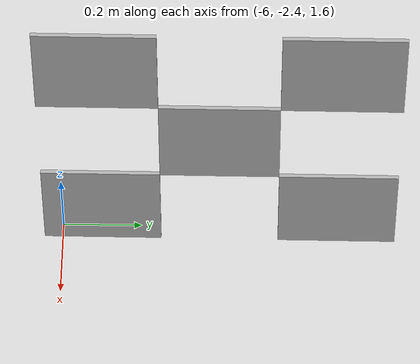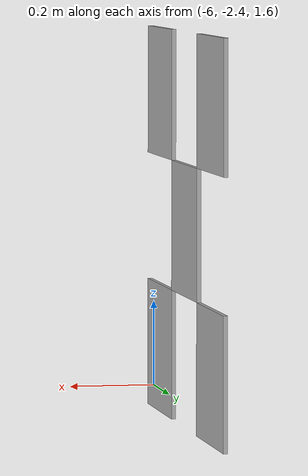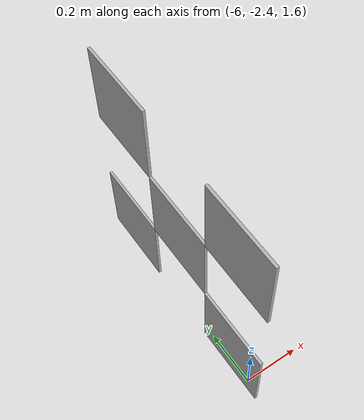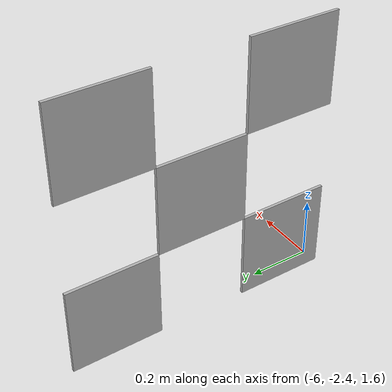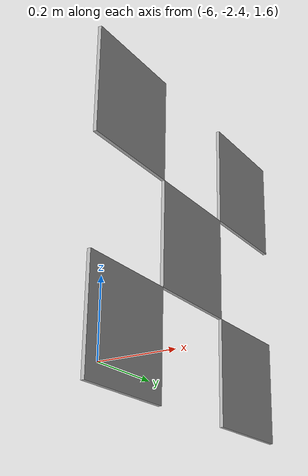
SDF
<?xml version="1.0" ?>
<sdf version="1.4">

	<model name='tag_bundle10'>

		<static>True</static>

		<link name="tag_45">

			<pose>-6 -2 2 0 0 3.1426</pose>

			<inertial>
	        	<mass>0.1</mass>

	        	<inertia>
					<ixx>0.0166667</ixx>
					<ixy>0</ixy>
					<ixz>0</ixz>
					<iyy>0.0166667</iyy>
					<iyz>0</iyz>
					<izz>0.0166667</izz>
        		</inertia>

        		<pose frame=''>0 0 0 0 -0 0</pose>
      		</inertial>

			<pose frame=''>0 0 0 0 -0 0</pose>
			<gravity>1</gravity>
			<self_collide>0</self_collide>
			<kinematic>0</kinematic>
			<enable_wind>0</enable_wind>

			<visual name='visual_45'>
				<pose frame=''>0 0 0 0 -0 0</pose>

		        <geometry>
		        	<box>
		        	<size>0.01 0.3 0.3</size>
		        	</box>
		        </geometry>

		        <material>
		        	<lighting>0</lighting>

		        	<script>
		        		<uri>models://media/materials/scripts/Apriltag.material</uri>
		        		<name>Apriltag/id45</name>
		          	</script>

		        	<shader type='vertex'>
		        		<normal_map>__default__</normal_map>
		          	</shader>

		        	<ambient>0.3 0.3 0.3 1</ambient>
		        	<diffuse>0.7 0.7 0.7 1</diffuse>
		        	<specular>0.01 0.01 0.01 1</specular>
		        	<emissive>0 0 0 1</emissive>
		        </material>

		        <transparency>0</transparency>
		        <cast_shadows>1</cast_shadows>
			</visual>

			<collision name='collision_45'>
				<laser_retro>0</laser_retro>
        		<max_contacts>10</max_contacts>
        		<pose frame=''>0 0 0 0 -0 0</pose>

		        <geometry>
		        	<box>
		        		<size>0.01 0.3 0.3</size>
		        	</box>
		        </geometry>

		        <surface>
		        	<friction>
		            	<ode>
		            		<mu>1</mu>
		            		<mu2>1</mu2>
		            		<fdir1>0 0 0</fdir1>
		            		<slip1>0</slip1>
		            		<slip2>0</slip2>
		            	</ode>

		           		<torsional>
		            		<coefficient>1</coefficient>
	            			<patch_radius>0</patch_radius>
	            			<surface_radius>0</surface_radius>
	            			<use_patch_radius>1</use_patch_radius>

	            			<ode>
		                		<slip>0</slip>
		              		</ode>
		            	</torsional>
		          	</friction>

		        	<bounce>
		            	<restitution_coefficient>0</restitution_coefficient>
		            	<threshold>1e+06</threshold>
		        	</bounce>

		        	<contact>
		            	<collide_without_contact>0</collide_without_contact>
		            	<collide_without_contact_bitmask>1</collide_without_contact_bitmask>
		            	<collide_bitmask>1</collide_bitmask>

		            	<ode>
		            		<soft_cfm>0</soft_cfm>
		            		<soft_erp>0.2</soft_erp>
		            		<kp>1e+13</kp>
		            		<kd>1</kd>
		            		<max_vel>0.01</max_vel>
		            		<min_depth>0</min_depth>
		            	</ode>

			            <bullet>
			            	<split_impulse>1</split_impulse>
			            	<split_impulse_penetration_threshold>-0.01</split_impulse_penetration_threshold>
			            	<soft_cfm>0</soft_cfm>
			            	<soft_erp>0.2</soft_erp>
			            	<kp>1e+13</kp>
			            	<kd>1</kd>
			            </bullet>
		        	</contact>
		        </surface>
		    </collision>
		</link>
 -->
		<link name="tag_46">

			<pose>-6 -1.7 2.3 0 0 3.1426</pose>

			<inertial>
	        	<mass>0.1</mass>

	        	<inertia>
					<ixx>0.0166667</ixx>
					<ixy>0</ixy>
					<ixz>0</ixz>
					<iyy>0.0166667</iyy>
					<iyz>0</iyz>
					<izz>0.0166667</izz>
        		</inertia>

        		<pose frame=''>0 0 0 0 -0 0</pose>
      		</inertial>

			<pose frame=''>0 0 0 0 -0 0</pose>
			<gravity>1</gravity>
			<self_collide>0</self_collide>
			<kinematic>0</kinematic>
			<enable_wind>0</enable_wind>

			<visual name='visual_46'>
				<pose frame=''>0 0 0 0 -0 0</pose>

		        <geometry>
		        	<box>
		        	<size>0.01 0.3 0.3</size>
		        	</box>
		        </geometry>

		        <material>
		        	<lighting>0</lighting>

		        	<script>
		        		<uri>models://media/materials/scripts/Apriltag.material</uri>
		        		<name>Apriltag/id46</name>
		          	</script>

		        	<shader type='vertex'>
		        		<normal_map>__default__</normal_map>
		          	</shader>

		        	<ambient>0.3 0.3 0.3 1</ambient>
		        	<diffuse>0.7 0.7 0.7 1</diffuse>
		        	<specular>0.01 0.01 0.01 1</specular>
		        	<emissive>0 0 0 1</emissive>
		        </material>

		        <transparency>0</transparency>
		        <cast_shadows>1</cast_shadows>
			</visual>

			<collision name='collision_46'>
				<laser_retro>0</laser_retro>
        		<max_contacts>10</max_contacts>
        		<pose frame=''>0 0 0 0 -0 0</pose>

		        <geometry>
		        	<box>
		        		<size>0.01 0.3 0.3</size>
		        	</box>
		        </geometry>

		        <surface>
		        	<friction>
		            	<ode>
		            		<mu>1</mu>
		            		<mu2>1</mu2>
		            		<fdir1>0 0 0</fdir1>
		            		<slip1>0</slip1>
		            		<slip2>0</slip2>
		            	</ode>

		           		<torsional>
		            		<coefficient>1</coefficient>
	            			<patch_radius>0</patch_radius>
	            			<surface_radius>0</surface_radius>
	            			<use_patch_radius>1</use_patch_radius>

	            			<ode>
		                		<slip>0</slip>
		              		</ode>
		            	</torsional>
		          	</friction>

		        	<bounce>
		            	<restitution_coefficient>0</restitution_coefficient>
		            	<threshold>1e+06</threshold>
		        	</bounce>

		        	<contact>
		            	<collide_without_contact>0</collide_without_contact>
		            	<collide_without_contact_bitmask>1</collide_without_contact_bitmask>
		            	<collide_bitmask>1</collide_bitmask>

		            	<ode>
		            		<soft_cfm>0</soft_cfm>
		            		<soft_erp>0.2</soft_erp>
		            		<kp>1e+13</kp>
		            		<kd>1</kd>
		            		<max_vel>0.01</max_vel>
		            		<min_depth>0</min_depth>
		            	</ode>

			            <bullet>
			            	<split_impulse>1</split_impulse>
			            	<split_impulse_penetration_threshold>-0.01</split_impulse_penetration_threshold>
			            	<soft_cfm>0</soft_cfm>
			            	<soft_erp>0.2</soft_erp>
			            	<kp>1e+13</kp>
			            	<kd>1</kd>
			            </bullet>
		        	</contact>
		        </surface>
		    </collision>
		</link>

		<link name="tag_47">

			<pose>-6 -2.3 2.3 0 0 3.1426</pose>

			<inertial>
	        	<mass>0.1</mass>

	        	<inertia>
					<ixx>0.0166667</ixx>
					<ixy>0</ixy>
					<ixz>0</ixz>
					<iyy>0.0166667</iyy>
					<iyz>0</iyz>
					<izz>0.0166667</izz>
        		</inertia>

        		<pose frame=''>0 0 0 0 -0 0</pose>
      		</inertial>

			<pose frame=''>0 0 0 0 -0 0</pose>
			<gravity>1</gravity>
			<self_collide>0</self_collide>
			<kinematic>0</kinematic>
			<enable_wind>0</enable_wind>

			<visual name='visual_47'>
				<pose frame=''>0 0 0 0 -0 0</pose>

		        <geometry>
		        	<box>
		        	<size>0.01 0.3 0.3</size>
		        	</box>
		        </geometry>

		        <material>
		        	<lighting>0</lighting>

		        	<script>
		        		<uri>models://media/materials/scripts/Apriltag.material</uri>
		        		<name>Apriltag/id47</name>
		          	</script>

		        	<shader type='vertex'>
		        		<normal_map>__default__</normal_map>
		          	</shader>

		        	<ambient>0.3 0.3 0.3 1</ambient>
		        	<diffuse>0.7 0.7 0.7 1</diffuse>
		        	<specular>0.01 0.01 0.01 1</specular>
		        	<emissive>0 0 0 1</emissive>
		        </material>

		        <transparency>0</transparency>
		        <cast_shadows>1</cast_shadows>
			</visual>

			<collision name='collision_47'>
				<laser_retro>0</laser_retro>
        		<max_contacts>10</max_contacts>
        		<pose frame=''>0 0 0 0 -0 0</pose>

		        <geometry>
		        	<box>
		        		<size>0.01 0.3 0.3</size>
		        	</box>
		        </geometry>

		        <surface>
		        	<friction>
		            	<ode>
		            		<mu>1</mu>
		            		<mu2>1</mu2>
		            		<fdir1>0 0 0</fdir1>
		            		<slip1>0</slip1>
		            		<slip2>0</slip2>
		            	</ode>

		           		<torsional>
		            		<coefficient>1</coefficient>
	            			<patch_radius>0</patch_radius>
	            			<surface_radius>0</surface_radius>
	            			<use_patch_radius>1</use_patch_radius>

	            			<ode>
		                		<slip>0</slip>
		              		</ode>
		            	</torsional>
		          	</friction>

		        	<bounce>
		            	<restitution_coefficient>0</restitution_coefficient>
		            	<threshold>1e+06</threshold>
		        	</bounce>

		        	<contact>
		            	<collide_without_contact>0</collide_without_contact>
		            	<collide_without_contact_bitmask>1</collide_without_contact_bitmask>
		            	<collide_bitmask>1</collide_bitmask>

		            	<ode>
		            		<soft_cfm>0</soft_cfm>
		            		<soft_erp>0.2</soft_erp>
		            		<kp>1e+13</kp>
		            		<kd>1</kd>
		            		<max_vel>0.01</max_vel>
		            		<min_depth>0</min_depth>
		            	</ode>

			            <bullet>
			            	<split_impulse>1</split_impulse>
			            	<split_impulse_penetration_threshold>-0.01</split_impulse_penetration_threshold>
			            	<soft_cfm>0</soft_cfm>
			            	<soft_erp>0.2</soft_erp>
			            	<kp>1e+13</kp>
			            	<kd>1</kd>
			            </bullet>
		        	</contact>
		        </surface>
		    </collision>
		</link>

		<link name="tag_48">

			<pose>-6 -2.3 1.7 0 0 3.1426</pose>

			<inertial>
	        	<mass>0.1</mass>

	        	<inertia>
					<ixx>0.0166667</ixx>
					<ixy>0</ixy>
					<ixz>0</ixz>
					<iyy>0.0166667</iyy>
					<iyz>0</iyz>
					<izz>0.0166667</izz>
        		</inertia>

        		<pose frame=''>0 0 0 0 -0 0</pose>
      		</inertial>

			<pose frame=''>0 0 0 0 -0 0</pose>
			<gravity>1</gravity>
			<self_collide>0</self_collide>
			<kinematic>0</kinematic>
			<enable_wind>0</enable_wind>

			<visual name='visual_48'>
				<pose frame=''>0 0 0 0 -0 0</pose>

		        <geometry>
		        	<box>
		        	<size>0.01 0.3 0.3</size>
		        	</box>
		        </geometry>

		        <material>
		        	<lighting>0</lighting>

		        	<script>
		        		<uri>models://media/materials/scripts/Apriltag.material</uri>
		        		<name>Apriltag/id48</name>
		          	</script>

		        	<shader type='vertex'>
		        		<normal_map>__default__</normal_map>
		          	</shader>

		        	<ambient>0.3 0.3 0.3 1</ambient>
		        	<diffuse>0.7 0.7 0.7 1</diffuse>
		        	<specular>0.01 0.01 0.01 1</specular>
		        	<emissive>0 0 0 1</emissive>
		        </material>

		        <transparency>0</transparency>
		        <cast_shadows>1</cast_shadows>
			</visual>

			<collision name='collision_48'>
				<laser_retro>0</laser_retro>
        		<max_contacts>10</max_contacts>
        		<pose frame=''>0 0 0 0 -0 0</pose>

		        <geometry>
		        	<box>
		        		<size>0.01 0.3 0.3</size>
		        	</box>
		        </geometry>

		        <surface>
		        	<friction>
		            	<ode>
		            		<mu>1</mu>
		            		<mu2>1</mu2>
		            		<fdir1>0 0 0</fdir1>
		            		<slip1>0</slip1>
		            		<slip2>0</slip2>
		            	</ode>

		           		<torsional>
		            		<coefficient>1</coefficient>
	            			<patch_radius>0</patch_radius>
	            			<surface_radius>0</surface_radius>
	            			<use_patch_radius>1</use_patch_radius>

	            			<ode>
		                		<slip>0</slip>
		              		</ode>
		            	</torsional>
		          	</friction>

		        	<bounce>
		            	<restitution_coefficient>0</restitution_coefficient>
		            	<threshold>1e+06</threshold>
		        	</bounce>

		        	<contact>
		            	<collide_without_contact>0</collide_without_contact>
		            	<collide_without_contact_bitmask>1</collide_without_contact_bitmask>
		            	<collide_bitmask>1</collide_bitmask>

		            	<ode>
		            		<soft_cfm>0</soft_cfm>
		            		<soft_erp>0.2</soft_erp>
		            		<kp>1e+13</kp>
		            		<kd>1</kd>
		            		<max_vel>0.01</max_vel>
		            		<min_depth>0</min_depth>
		            	</ode>

			            <bullet>
			            	<split_impulse>1</split_impulse>
			            	<split_impulse_penetration_threshold>-0.01</split_impulse_penetration_threshold>
			            	<soft_cfm>0</soft_cfm>
			            	<soft_erp>0.2</soft_erp>
			            	<kp>1e+13</kp>
			            	<kd>1</kd>
			            </bullet>
		        	</contact>
		        </surface>
		    </collision>
		</link>

		<link name="tag_49">

			<pose>-6 -1.7 1.7 0 0 3.1426</pose>

			<inertial>
	        	<mass>0.1</mass>

	        	<inertia>
					<ixx>0.0166667</ixx>
					<ixy>0</ixy>
					<ixz>0</ixz>
					<iyy>0.0166667</iyy>
					<iyz>0</iyz>
					<izz>0.0166667</izz>
        		</inertia>

        		<pose frame=''>0 0 0 0 -0 0</pose>
      		</inertial>

			<pose frame=''>0 0 0 0 -0 0</pose>
			<gravity>1</gravity>
			<self_collide>0</self_collide>
			<kinematic>0</kinematic>
			<enable_wind>0</enable_wind>

			<visual name='visual_49'>
				<pose frame=''>0 0 0 0 -0 0</pose>

		        <geometry>
		        	<box>
		        	<size>0.01 0.3 0.3</size>
		        	</box>
		        </geometry>

		        <material>
		        	<lighting>0</lighting>

		        	<script>
		        		<uri>models://media/materials/scripts/Apriltag.material</uri>
		        		<name>Apriltag/id49</name>
		          	</script>

		        	<shader type='vertex'>
		        		<normal_map>__default__</normal_map>
		          	</shader>

		        	<ambient>0.3 0.3 0.3 1</ambient>
		        	<diffuse>0.7 0.7 0.7 1</diffuse>
		        	<specular>0.01 0.01 0.01 1</specular>
		        	<emissive>0 0 0 1</emissive>
		        </material>

		        <transparency>0</transparency>
		        <cast_shadows>1</cast_shadows>
			</visual>

			<collision name='collision_49'>
				<laser_retro>0</laser_retro>
        		<max_contacts>10</max_contacts>
        		<pose frame=''>0 0 0 0 -0 0</pose>

		        <geometry>
		        	<box>
		        		<size>0.01 0.3 0.3</size>
		        	</box>
		        </geometry>

		        <surface>
		        	<friction>
		            	<ode>
		            		<mu>1</mu>
		            		<mu2>1</mu2>
		            		<fdir1>0 0 0</fdir1>
		            		<slip1>0</slip1>
		            		<slip2>0</slip2>
		            	</ode>

		           		<torsional>
		            		<coefficient>1</coefficient>
	            			<patch_radius>0</patch_radius>
	            			<surface_radius>0</surface_radius>
	            			<use_patch_radius>1</use_patch_radius>

	            			<ode>
		                		<slip>0</slip>
		              		</ode>
		            	</torsional>
		          	</friction>

		        	<bounce>
		            	<restitution_coefficient>0</restitution_coefficient>
		            	<threshold>1e+06</threshold>
		        	</bounce>

		        	<contact>
		            	<collide_without_contact>0</collide_without_contact>
		            	<collide_without_contact_bitmask>1</collide_without_contact_bitmask>
		            	<collide_bitmask>1</collide_bitmask>

		            	<ode>
		            		<soft_cfm>0</soft_cfm>
		            		<soft_erp>0.2</soft_erp>
		            		<kp>1e+13</kp>
		            		<kd>1</kd>
		            		<max_vel>0.01</max_vel>
		            		<min_depth>0</min_depth>
		            	</ode>

			            <bullet>
			            	<split_impulse>1</split_impulse>
			            	<split_impulse_penetration_threshold>-0.01</split_impulse_penetration_threshold>
			            	<soft_cfm>0</soft_cfm>
			            	<soft_erp>0.2</soft_erp>
			            	<kp>1e+13</kp>
			            	<kd>1</kd>
			            </bullet>
		        	</contact>
		        </surface>
		    </collision>
		</link>

		<joint name = "joint_1" type="fixed">
			<axis xyz="0 0 0" />
			<parent link="tag_45" />
			<child link="tag_46" />
	    </joint>

	    <joint name = "joint_2" type="fixed">
			<axis xyz="0 0 0" />
			<parent link="tag_45" />
			<child link="tag_47" />
	    </joint>

	    <joint name = "joint_3" type="fixed">
			<axis xyz="0 0 0" />
			<parent link="tag_45" />
			<child link="tag_48" />
	    </joint>

	    <joint name = "joint_4" type="fixed">
			<axis xyz="0 0 0" />
			<parent link="tag_45" />
			<child link="tag_49" />
	    </joint>

	</model>
</sdf>
